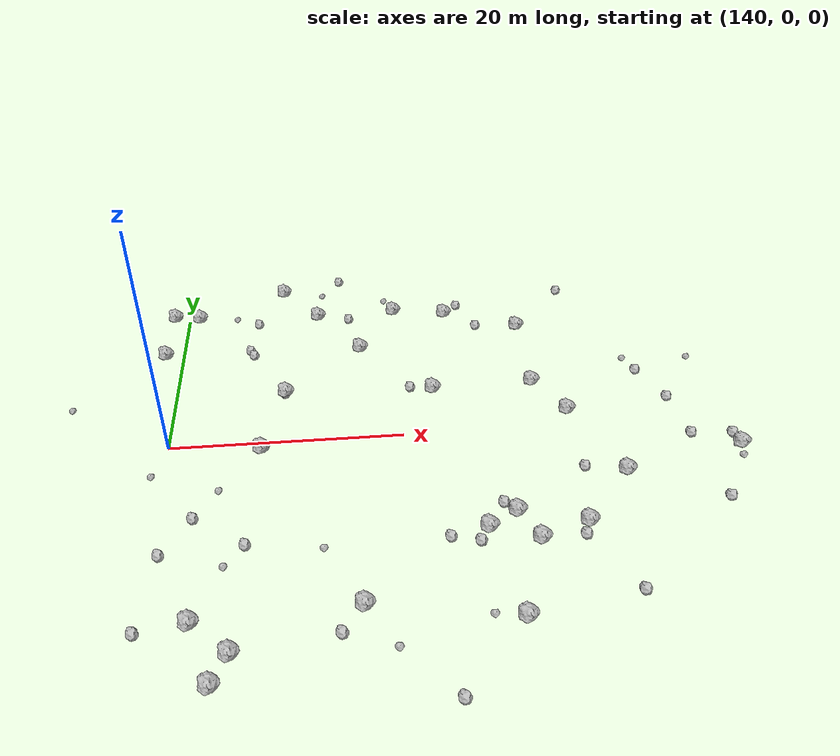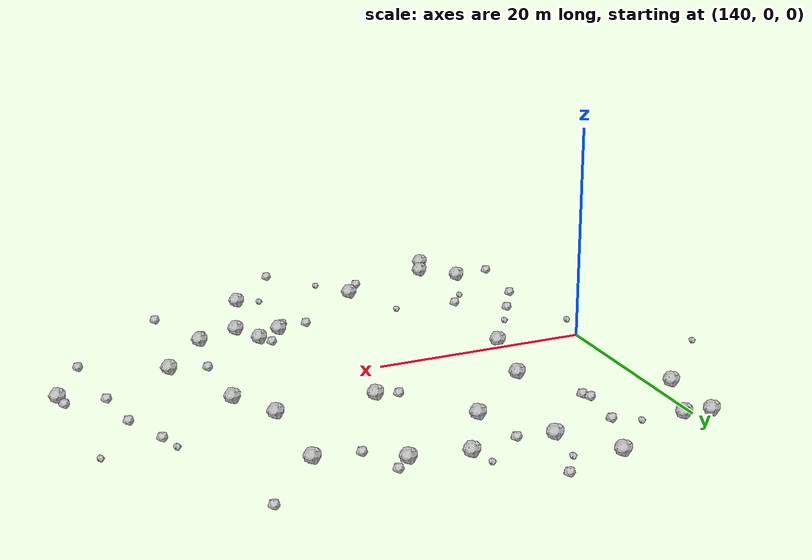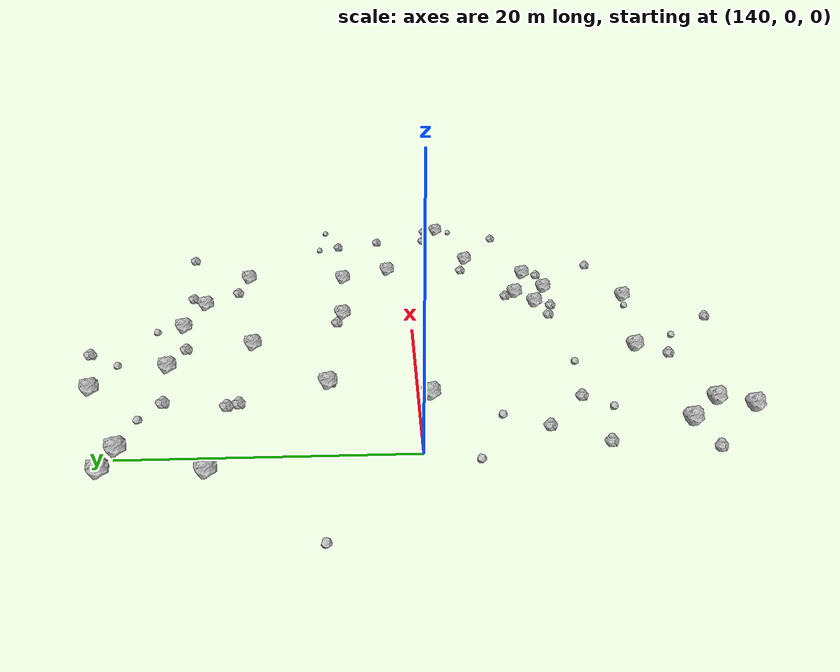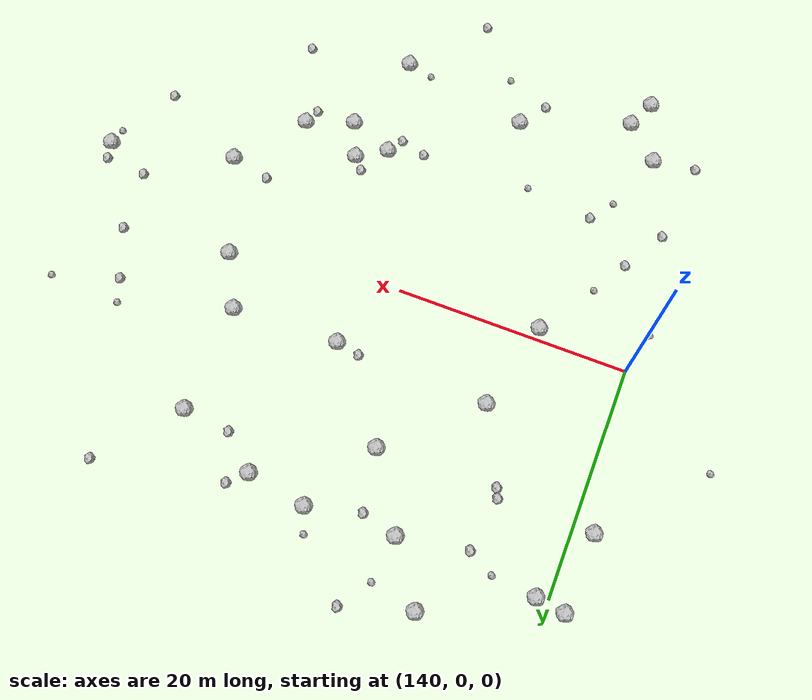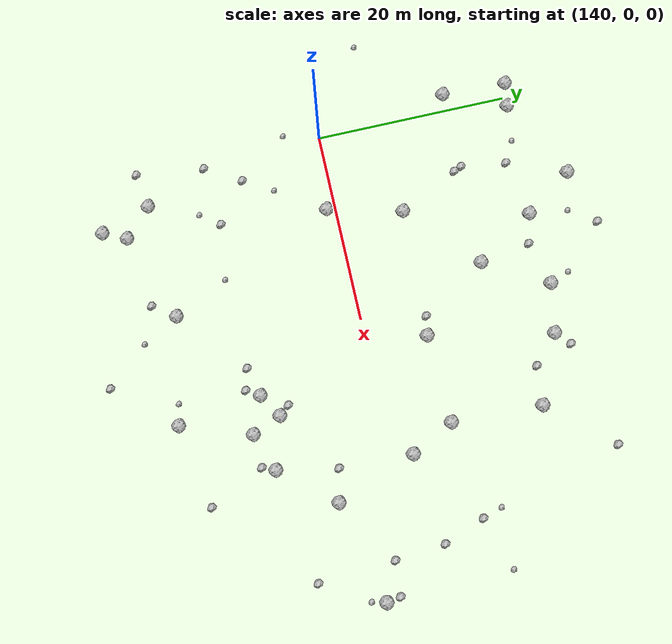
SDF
<sdf version="1.6">
 <world name="default">
  <include><uri>model://sun</uri></include>
  <model name="rock1_4_2">
   <include><uri>model://rock1</uri><pose>141.0560266343992 20.14636525306463 0.5 0 0 0</pose></include>
  </model>
  <model name="rock1_4_3">
   <include><uri>model://rock1</uri><pose>177.8515989010603 -6.312187277774591 0.5 0 0 0</pose></include>
  </model>
  <model name="rock1_4_4">
   <include><uri>model://rock1</uri><pose>149.84480215611484 6.794439751423077 0.5 0 0 0</pose></include>
  </model>
  <model name="rock1_4_5">
   <include><uri>model://rock1</uri><pose>143.4771052780727 -19.03511132456902 0.5 0 0 0</pose></include>
  </model>
  <model name="rock1_4_6">
   <include><uri>model://rock1</uri><pose>172.8288042612766 16.019656489912123 0.5 0 0 0</pose></include>
  </model>
  <model name="rock1_4_7">
   <include><uri>model://rock1</uri><pose>172.4633638527768 6.567745307419941 0.5 0 0 0</pose></include>
  </model>
  <model name="rock1_4_8">
   <include><uri>model://rock1</uri><pose>188.4782875926486 -3.8497846484178027 0.5 0 0 0</pose></include>
  </model>
  <model name="rock1_4_9">
   <include><uri>model://rock1</uri><pose>165.85513018736725 19.035200565650683 0.5 0 0 0</pose></include>
  </model>
  <model name="rock1_4_10">
   <include><uri>model://rock1</uri><pose>169.25056184063493 -13.254371288467542 0.5 0 0 0</pose></include>
  </model>
  <model name="rock1_4_11">
   <include><uri>model://rock1</uri><pose>155.59283398787042 -18.440932690361187 0.5 0 0 0</pose></include>
  </model>
  <model name="rock1_4_12">
   <include><uri>model://rock1</uri><pose>145.2654588432042 -24.214713217499096 0.5 0 0 0</pose></include>
  </model>
  <model name="rock1_4_13">
   <include><uri>model://rock1</uri><pose>153.00427966936527 19.596211376517253 0.5 0 0 0</pose></include>
  </model>
  <model name="rock1_4_14">
   <include><uri>model://rock1</uri><pose>173.27010947445834 -11.79649672419523 0.5 0 0 0</pose></include>
  </model>
  <model name="rock1_4_15">
   <include><uri>model://rock1</uri><pose>163.22776901372617 6.22784845896112 0.5 0 0 0</pose></include>
  </model>
  <model name="rock1_4_16">
   <include><uri>model://rock1</uri><pose>167.9666199384982 -10.234750178880041 0.5 0 0 0</pose></include>
  </model>
  <model name="rock1_4_17">
   <include><uri>model://rock1</uri><pose>138.3272582015937 13.784681683808287 0.5 0 0 0</pose></include>
  </model>
  <model name="rock1_4_18">
   <include><uri>model://rock1</uri><pose>166.71539899658464 -20.44888376863975 0.5 0 0 0</pose></include>
  </model>
  <model name="rock1_4_19">
   <include><uri>model://rock1</uri><pose>156.96224453751333 13.448217814610764 0.5 0 0 0</pose></include>
  </model>
  <model name="rock1_4_20">
   <include><uri>model://rock1</uri><pose>138.56772695533942 20.516504491286035 0.5 0 0 0</pose></include>
  </model>
  <model name="rock1_4_21">
   <include><uri>model://rock1</uri><pose>165.5072550109148 -11.7449029455764 0.5 0 0 0</pose></include>
  </model>
  <model name="rock1_4_22">
   <include><uri>model://rock1</uri><pose>149.52014243435687 24.54717190079728 0.5 0 0 0</pose></include>
  </model>
  <model name="rock1_4_23">
   <include><uri>model://rock1</uri><pose>147.8740581702038 -0.9277833717583128 0.5 0 0 0</pose></include>
  </model>
  <model name="rock1_4_24">
   <include><uri>model://rock1</uri><pose>174.75258975073785 2.0694240031583178 0.5 0 0 0</pose></include>
  </model>
  <model name="rock1_4_25">
   <include><uri>model://rock1</uri><pose>160.703887319173 19.950177566648996 0.5 0 0 0</pose></include>
  </model>
  <model name="rock1_4_26">
   <include><uri>model://rock1</uri><pose>146.37548123132194 -21.811498048125692 0.5 0 0 0</pose></include>
  </model>
  <model name="rock2_4_0">
   <include><uri>model://rock2</uri><pose>184.6305638021164 -2.0765720587781935 0.3 0 0 0</pose></include>
  </model>
  <model name="rock2_4_1">
   <include><uri>model://rock2</uri><pose>139.77862444875242 -19.594674223662025 0.3 0 0 0</pose></include>
  </model>
  <model name="rock2_4_2">
   <include><uri>model://rock2</uri><pose>146.96843961177328 -11.994800173569342 0.3 0 0 0</pose></include>
  </model>
  <model name="rock2_4_3">
   <include><uri>model://rock2</uri><pose>164.62226236461424 -13.09311113590985 0.3 0 0 0</pose></include>
  </model>
  <model name="rock2_4_4">
   <include><uri>model://rock2</uri><pose>149.7673758662403 6.631216830914461 0.3 0 0 0</pose></include>
  </model>
  <model name="rock2_4_5">
   <include><uri>model://rock2</uri><pose>167.26647895374427 20.434285994215458 0.3 0 0 0</pose></include>
  </model>
  <model name="rock2_4_6">
   <include><uri>model://rock2</uri><pose>140.65366141974883 -12.54300723742136 0.3 0 0 0</pose></include>
  </model>
  <model name="rock2_4_7">
   <include><uri>model://rock2</uri><pose>188.20428638741794 -2.3808298366033647 0.3 0 0 0</pose></include>
  </model>
  <model name="rock2_4_8">
   <include><uri>model://rock2</uri><pose>167.05387034530213 -9.182196484767044 0.3 0 0 0</pose></include>
  </model>
  <model name="rock2_4_9">
   <include><uri>model://rock2</uri><pose>175.46161748321458 -18.840651797337486 0.3 0 0 0</pose></include>
  </model>
  <model name="rock2_4_10">
   <include><uri>model://rock2</uri><pose>168.71152661007463 16.47210829742508 0.3 0 0 0</pose></include>
  </model>
  <model name="rock2_4_11">
   <include><uri>model://rock2</uri><pose>153.89409638497443 -20.72636878112651 0.3 0 0 0</pose></include>
  </model>
  <model name="rock2_4_12">
   <include><uri>model://rock2</uri><pose>147.05675170947848 18.56351371190113 0.3 0 0 0</pose></include>
  </model>
  <model name="rock2_4_13">
   <include><uri>model://rock2</uri><pose>146.4053448147082 13.861308131505318 0.3 0 0 0</pose></include>
  </model>
  <model name="rock2_4_14">
   <include><uri>model://rock2</uri><pose>156.05673004714941 18.780707093882818 0.3 0 0 0</pose></include>
  </model>
  <model name="rock2_4_15">
   <include><uri>model://rock2</uri><pose>161.41102829574265 -26.495084875185068 0.3 0 0 0</pose></include>
  </model>
  <model name="rock2_4_16">
   <include><uri>model://rock2</uri><pose>146.7536284614192 13.051647686094789 0.3 0 0 0</pose></include>
  </model>
  <model name="rock2_4_17">
   <include><uri>model://rock2</uri><pose>182.521808367534 7.467562725530755 0.3 0 0 0</pose></include>
  </model>
  <model name="rock2_4_18">
   <include><uri>model://rock2</uri><pose>178.3520981468559 22.52480695354084 0.3 0 0 0</pose></include>
  </model>
  <model name="rock2_4_19">
   <include><uri>model://rock2</uri><pose>161.1671836212171 6.629597033593868 0.3 0 0 0</pose></include>
  </model>
  <model name="rock2_4_20">
   <include><uri>model://rock2</uri><pose>155.33284682359312 26.34478051936493 0.3 0 0 0</pose></include>
  </model>
  <model name="rock2_4_21">
   <include><uri>model://rock2</uri><pose>185.1408441133933 -10.039179656112513 0.3 0 0 0</pose></include>
  </model>
  <model name="rock2_4_22">
   <include><uri>model://rock2</uri><pose>142.83374854925157 -8.860582921752304 0.3 0 0 0</pose></include>
  </model>
  <model name="rock2_4_23">
   <include><uri>model://rock2</uri><pose>174.44928367904643 -5.541391135115447 0.3 0 0 0</pose></include>
  </model>
  <model name="rock2_4_24">
   <include><uri>model://rock2</uri><pose>184.15253544973933 3.1584384049181153 0.3 0 0 0</pose></include>
  </model>
  <model name="rock2_4_25">
   <include><uri>model://rock2</uri><pose>162.42140084756178 -12.491570753016173 0.3 0 0 0</pose></include>
  </model>
  <model name="rock2_4_26">
   <include><uri>model://rock2</uri><pose>172.66911704652583 -13.13079951803611 0.3 0 0 0</pose></include>
  </model>
  <model name="rock3_4_0">
   <include><uri>model://rock3</uri><pose>188.08740800906259 9.201727500739906 0.2 0 0 0</pose></include>
  </model>
  <model name="rock3_4_1">
   <include><uri>model://rock3</uri><pose>130.97705042032095 5.8003856275345385 0.2 0 0 0</pose></include>
  </model>
  <model name="rock3_4_2">
   <include><uri>model://rock3</uri><pose>145.4669792756114 -14.03515607690245 0.2 0 0 0</pose></include>
  </model>
  <model name="rock3_4_3">
   <include><uri>model://rock3</uri><pose>188.07134340754865 -5.319002686319806 0.2 0 0 0</pose></include>
  </model>
  <model name="rock3_4_4">
   <include><uri>model://rock3</uri><pose>157.64716016355038 -22.232672821509937 0.2 0 0 0</pose></include>
  </model>
  <model name="rock3_4_5">
   <include><uri>model://rock3</uri><pose>144.8092840534864 19.7453746395408 0.2 0 0 0</pose></include>
  </model>
  <model name="rock3_4_6">
   <include><uri>model://rock3</uri><pose>181.856584833132 9.481074125682774 0.2 0 0 0</pose></include>
  </model>
  <model name="rock3_4_7">
   <include><uri>model://rock3</uri><pose>159.85623837433107 22.02141851515057 0.2 0 0 0</pose></include>
  </model>
  <model name="rock3_4_8">
   <include><uri>model://rock3</uri><pose>153.46971736173822 23.610496041605757 0.2 0 0 0</pose></include>
  </model>
  <model name="rock3_4_9">
   <include><uri>model://rock3</uri><pose>164.46217095049698 -20.045630322852777 0.2 0 0 0</pose></include>
  </model>
  <model name="rock3_4_10">
   <include><uri>model://rock3</uri><pose>144.59158597929058 -5.849903428028696 0.2 0 0 0</pose></include>
  </model>
  <model name="rock3_4_11">
   <include><uri>model://rock3</uri><pose>152.83823340719704 -12.811828895583034 0.2 0 0 0</pose></include>
  </model>
  <model name="rock3_4_12">
   <include><uri>model://rock3</uri><pose>138.9970573883614 -3.6975194726572234 0.2 0 0 0</pose></include>
  </model>
 </world>
</sdf>
